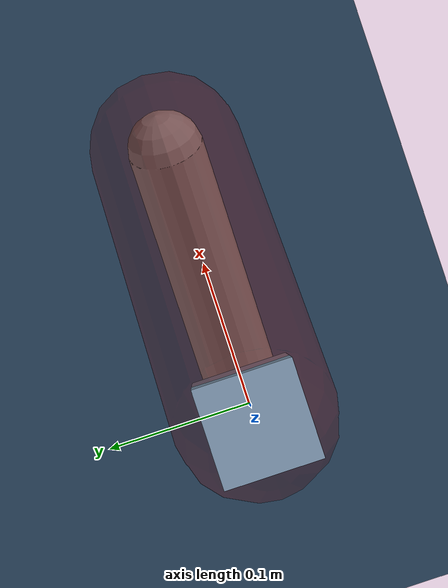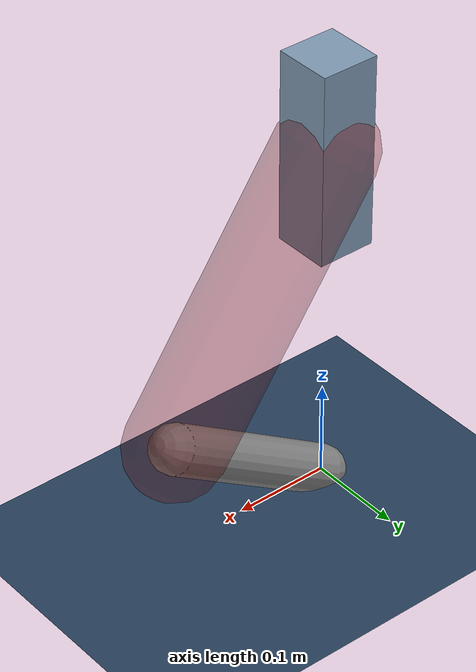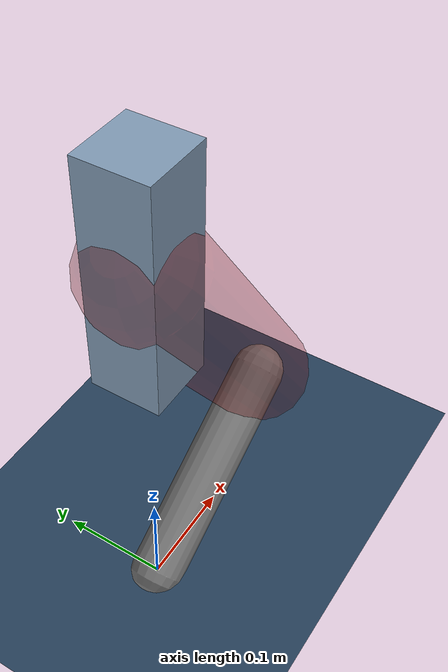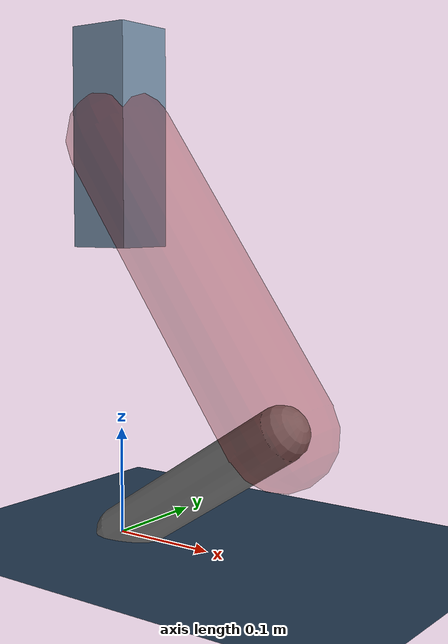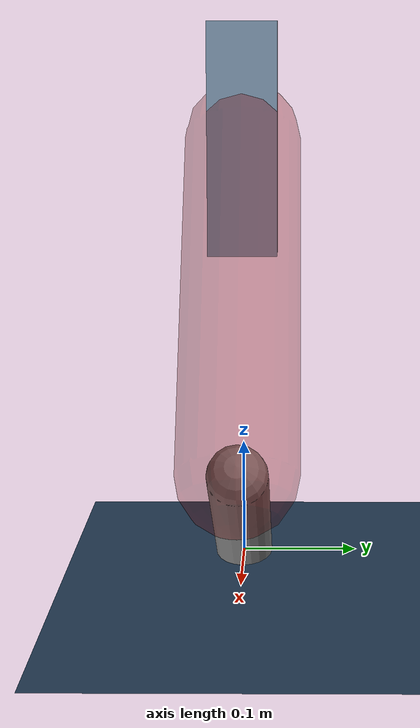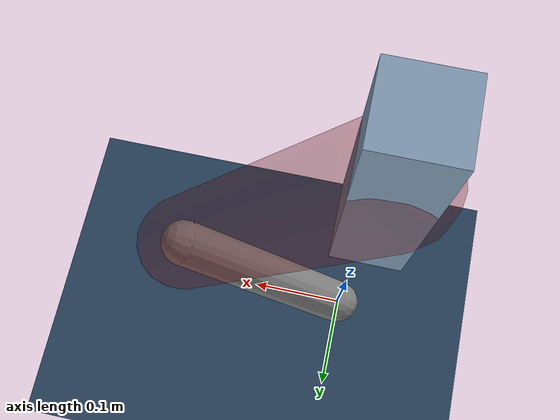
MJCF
<mujoco model="Hopper2D">
	<compiler inertiafromgeom="true" angle="radian" />
	<option timestep="0.001" integrator="implicit" cone="elliptic" solver="Newton" tolerance="1e-10" />

	<default>
		<geom contype="1" conaffinity="1" condim="3" friction="2 0.005 0.0001" solref="0.005 1" />
		<joint limited="true" damping="0.1" />
	</default>

	<asset>
		<texture name="skybox" type="skybox" builtin="gradient" rgb1=".4 .6 .8" rgb2="0 0 0" width="800" height="800" />
		<texture name="grid" type="2d" builtin="checker" rgb1=".1 .2 .3" rgb2=".2 .3 .4" width="300" height="300" mark="edge" markrgb=".2 .3 .4" />
		<material name="ground" texture="grid" texrepeat="1 1" texuniform="true" reflectance="0.1" />
		<material name="leg" rgba="0.5 0.6 0.7 1" />
	</asset>

	<worldbody>

		<geom name="floor" type="plane" size="5 5 0.25" material="ground" />

		<light directional="false" diffuse="0.8 0.8 0.8" specular="0.3 0.3 0.3" pos="0 0 2" dir="0 0 -1" />
		<light mode="targetbodycom" target="base" directional="false" diffuse="0.8 0.8 0.8" specular="0.3 0.3 0.3" pos="0 0 2" dir="0 0 -1" />

		<camera name="fixed" pos="0 -2 1" xyaxes="1 0 0 0 0 1" />
		<camera name="tracking" mode="trackcom" pos="0 -3 1" />

		<body name="root" pos="0 0 0.3712113594365788">
			<joint name="slide_x" type="slide" axis="1 0 0" range="-100 100" />
			<joint name="slide_z" type="slide" axis="0 0 1" range="0 10" />

			<body name="base" pos="0 0 0">
				<geom name="torso" type="box" size="0.03 0.03 0.1" mass="2.671" material="leg" />

				<body name="link1" pos="0 0 0" euler="0 0.9588228841776566 0">
					<joint type="hinge" axis="0 -1 0" pos="0 0 0" name="hinge1" limited="true" range="-3.14 3.14" stiffness="0" damping="0.1" />
					<geom name="thigh" type="capsule" fromto="0 0 0 0.3106441600376825 0 0" size="0.05" rgba="0.5 0 0 0.3" mass="1.017639232101743" />

					<body name="link2" pos="0.3106441600376825 0 0" euler="0 1.6026804862788513 0">
						<joint type="hinge" axis="0 -1 0" pos="0 0 0" name="hinge2" limited="true" range="-3.14 3.14" stiffness="0" damping="0.1" />
						<geom name="shank" type="capsule" fromto="0 0 0 0.21336338243168995 0 0" size="0.025" mass="0.412127044188521" />

					</body>
				</body>
			</body>
		</body>
	</worldbody>

	<actuator>
		<motor name="torque1" joint="hinge1" ctrlrange="-82.66141282891924 82.66141282891924" ctrllimited="true" gear="1" />
		<motor name="torque2" joint="hinge2" ctrlrange="-39.65329472456796 39.65329472456796" ctrllimited="true" gear="1" />
	</actuator>
</mujoco>
